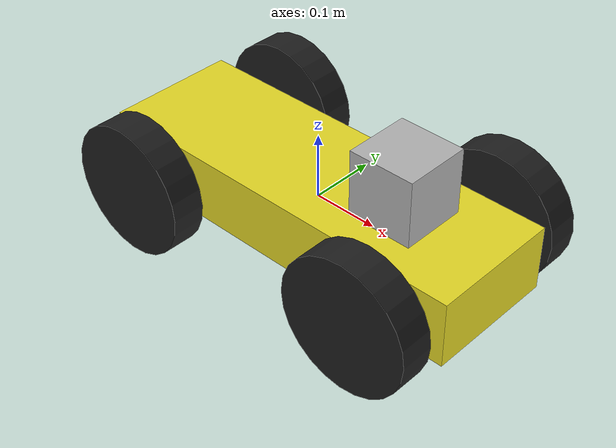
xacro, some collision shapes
<?xml version='1.0'?>

<robot name="my_robot" xmlns:xacro="http://www.ros.org/wiki/xacro">

  <link name="robot_footprint"></link>

  <xacro:include filename="$(find my_robot)/urdf/my_robot.gazebo"/>

  <joint name="robot_footprint_joint" type="fixed">
    <origin xyz="0 0 0" rpy="0 0 0" />
    <parent link="robot_footprint"/>
    <child link="chassis" />
  </joint>

  <!--Joint left_front_wheel and chasis-->
  <joint type="continuous" name="left_wheel_hinge">
    <origin xyz="0.20 0.15 0" rpy="0 0 0"/>
    <child link="left_front_wheel"/>
    <parent link="chassis"/>
    <axis xyz="0 1 0" rpy="0 0 0"/>
    <limit effort="10000" velocity="1000"/>
    <dynamics damping="1.0" friction="1.0"/>
  </joint>

  <!--Joint right_front_wheel and chasis-->
  <joint type="continuous" name="right_wheel_hinge">
    <origin xyz="0.20 -0.15 0" rpy="0 0 0"/>
    <child link="right_front_wheel"/>
    <parent link="chassis"/>
    <axis xyz="0 1 0" rpy="0 0 0"/>
    <limit effort="10000" velocity="1000"/>
    <dynamics damping="1.0" friction="1.0"/>
  </joint>

  <!--Joint left_rear_wheel and chasis-->
  <joint type="continuous" name="left_rear_wheel_hinge">
    <origin xyz="-0.20 0.15 0" rpy="0 0 0"/>
    <child link="left_rear_wheel"/>
    <parent link="chassis"/>
    <axis xyz="0 1 0" rpy="0 0 0"/>
    <limit effort="10000" velocity="1000"/>
    <dynamics damping="1.0" friction="1.0"/>
  </joint>

  <!--Joint right_rear_wheel and chasis-->
  <joint type="continuous" name="right_rear_wheel_hinge">
    <origin xyz="-0.20 -0.15 0" rpy="0 0 0"/>
    <child link="right_rear_wheel"/>
    <parent link="chassis"/>
    <axis xyz="0 1 0" rpy="0 0 0"/>
    <limit effort="10000" velocity="1000"/>
    <dynamics damping="1.0" friction="1.0"/>
  </joint>

  <!--Joint camera and chasis-->
  <joint type="fixed" name="camera_joint">
    <origin xyz="0.2 0 0" rpy="0 0 0"/>
    <child link="camera"/>
    <parent link="chassis"/>
    <axis xyz="0 1 0" rpy="0 0 0"/>
    <limit effort="10000" velocity="1000"/>
    <dynamics damping="1.0" friction="1.0"/>
  </joint>

  <!--Joint hokuyo and chasis-->
  <joint type="fixed" name="hokuyo_joint">
    <origin xyz="0.15 0 0.1" rpy="0 0 0"/>
    <child link="hokuyo"/>
    <parent link="chassis"/>
    <axis xyz="0 1 0" rpy="0 0 0"/>
    <limit effort="10000" velocity="1000"/>
    <dynamics damping="1.0" friction="1.0"/>
  </joint>

  <!--Joint RGB-D camera-->
  <joint name="camera_optical_joint" type="fixed">
    <origin xyz="0 0 0" rpy="-1.5707 0 -1.5707"/>
    <parent link="camera"/>
    <child link="camera_link_optical"/>
  </joint>

  <!--Chasis model-->
  <link name='chassis'>
    <pose>0 0 0.1 0 0 0</pose>

    <inertial>
      <mass value="15.0"/>
      <origin xyz="0.0 0 0" rpy=" 0 0 0"/>
      <inertia
          ixx="0.1" ixy="0" ixz="0"
          iyy="0.1" iyz="0"
          izz="0.1"
      />
    </inertial>

    <collision name='collision'>
      <origin xyz="0 0 0" rpy=" 0 0 0"/>
      <geometry>
        <box size=".6 .2 .1"/>
      </geometry>
    </collision>

    <visual name='chassis_visual'>
      <origin xyz="0 0 0" rpy=" 0 0 0"/>
      <geometry>
        <box size=".6 .2 .1"/>
      </geometry>
    </visual>

    <collision name='back_caster_collision'>
      <origin xyz="-0.20 0 -0.05" rpy=" 0 0 0"/>
      <geometry>
        <sphere radius="0.0499"/>
      </geometry>
    </collision>

    <visual name='back_caster_visual'>
      <origin xyz="-0.20 0 -0.05" rpy=" 0 0 0"/>
      <geometry>
        <sphere radius="0.05"/>
      </geometry>
    </visual>

    <collision name='front_caster_collision'>
      <origin xyz="0.15 0 -0.05" rpy=" 0 0 0"/>
      <geometry>
        <sphere radius="0.0499"/>
      </geometry>
    </collision>

    <visual name='front_caster_visual'>
      <origin xyz="0.15 0 -0.05" rpy=" 0 0 0"/>
      <geometry>
        <sphere radius="0.05"/>
      </geometry>
    </visual>

  </link>

  <!--left_front_wheel model-->
  <link name='left_front_wheel'>
    <pose>0 0 0.1 0 0 0</pose>
    <inertial>
      <mass value="5.0"/>
      <origin xyz="0.0 0 0" rpy=" 0 1.5707 1.5707"/>
      <inertia
          ixx="0.1" ixy="0" ixz="0"
          iyy="0.1" iyz="0"
          izz="0.1"
      />
    </inertial>

    <collision name='left_front_wheel_collision'>
      <origin xyz="0.0 0 0" rpy=" 0 1.5707 1.5707"/>
      <geometry>
        <cylinder radius="0.1" length="0.05"/>
      </geometry>
    </collision>

    <visual>
      <origin xyz="0.0 0 0" rpy=" 0 1.5707 1.5707"/>
      <geometry>
        <cylinder radius="0.1" length="0.05"/>
      </geometry>
    </visual>
  </link>

  <!--right_front_wheel model-->
  <link name='right_front_wheel'>
    <pose>0 0 0.1 0 0 0</pose>
    <inertial>
      <mass value="5.0"/>
      <origin xyz="0.0 0 0" rpy=" 0 1.5707 1.5707"/>
      <inertia
          ixx="0.1" ixy="0" ixz="0"
          iyy="0.1" iyz="0"
          izz="0.1"
      />
    </inertial>

    <collision name='right_front_wheel_collision'>
      <origin xyz="0.0 0 0" rpy=" 0 1.5707 1.5707"/>
      <geometry>
        <cylinder radius="0.1" length="0.05"/>
      </geometry>
    </collision>

    <visual>
      <origin xyz="0.0 0 0" rpy=" 0 1.5707 1.5707"/>
      <geometry>
        <cylinder radius="0.1" length="0.05"/>
      </geometry>
    </visual>
  </link>

  <!--left_rear_wheel model-->
  <link name='left_rear_wheel'>
    <pose>0 0 0.1 0 0 0</pose>
    <inertial>
      <mass value="5.0"/>
      <origin xyz="0.0 0 0" rpy=" 0 1.5707 1.5707"/>
      <inertia
          ixx="0.1" ixy="0" ixz="0"
          iyy="0.1" iyz="0"
          izz="0.1"
      />
    </inertial>

    <collision name='left_rear_wheel_collision'>
      <origin xyz="0.0 0 0" rpy=" 0 1.5707 1.5707"/>
      <geometry>
        <cylinder radius="0.1" length="0.05"/>
      </geometry>
    </collision>

    <visual>
      <origin xyz="0.0 0 0" rpy=" 0 1.5707 1.5707"/>
      <geometry>
        <cylinder radius="0.1" length="0.05"/>
      </geometry>
    </visual>
  </link>

  <!--right_rear_wheel model-->
  <link name='right_rear_wheel'>
    <pose>0 0 0.1 0 0 0</pose>
    <inertial>
      <mass value="5.0"/>
      <origin xyz="0.0 0 0" rpy=" 0 1.5707 1.5707"/>
      <inertia
          ixx="0.1" ixy="0" ixz="0"
          iyy="0.1" iyz="0"
          izz="0.1"
      />
    </inertial>

    <collision name='right_rear_wheel_collision'>
      <origin xyz="0.0 0 0" rpy=" 0 1.5707 1.5707"/>
      <geometry>
        <cylinder radius="0.1" length="0.05"/>
      </geometry>
    </collision>

    <visual>
      <origin xyz="0.0 0 0" rpy=" 0 1.5707 1.5707"/>
      <geometry>
        <cylinder radius="0.1" length="0.05"/>
      </geometry>
    </visual>
  </link>

  <!--camera model-->
  <link name='camera'>
    <pose>0 0 0 0 0 0</pose>
    <inertial>
      <mass value="0.1"/>
      <origin xyz="0.0 0 0" rpy=" 0 1.5707 1.5707"/>
      <inertia
          ixx="1e-6" ixy="0" ixz="0"
          iyy="1e-6" iyz="0"
          izz="1e-6"
      />
      <box_inertia  m=".1" x=".05" y=".05" z=".05"/>
    </inertial>

    <collision name='camera_collision'>
      <origin xyz="0.0 0 0" rpy=" 0 1.5707 1.5707"/>
      <geometry>
        <box size=".05 .05 .05"/>
      </geometry>
    </collision>

    <visual name='camera_visual'>
      <origin xyz="0.0 0 0" rpy=" 0 1.5707 1.5707"/>
      <geometry>
        <box size=".05 .05 .05"/>
      </geometry>
    </visual>
  </link>

  <!--lidar model-->
  <link name='hokuyo'>
    <pose>0 0 0 0 0 0</pose>

    <inertial>
      <mass value="1e-5"/>
      <origin xyz="0.0 0 0" rpy=" 0 0 0"/>
      <inertia
          ixx="1e-6" ixy="0" ixz="0"
          iyy="1e-6" iyz="0"
          izz="1e-6"
      />
    </inertial>

    <collision name='lidar_collision'>
      <origin xyz="0.0 0 0" rpy=" 0 0 0"/>
      <geometry>
        <box size=".1 .1 .1"/>
      </geometry>
    </collision>

    <visual name='lidar_visual'>
      <origin xyz="0.0 0 0" rpy=" 0 0 0"/>
      <geometry>
        <mesh filename ="package://my_robot/meshes/hokuyo.dae"/>
      </geometry>
    </visual>
  </link>

  <!--RGB-D camera link -->
  <link name="camera_link_optical">
  </link>
</robot>
